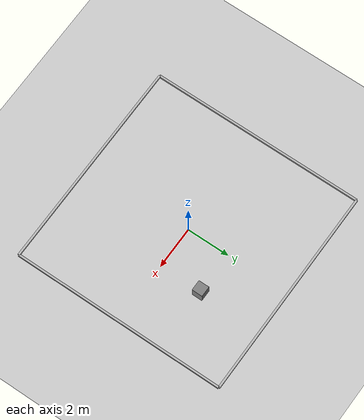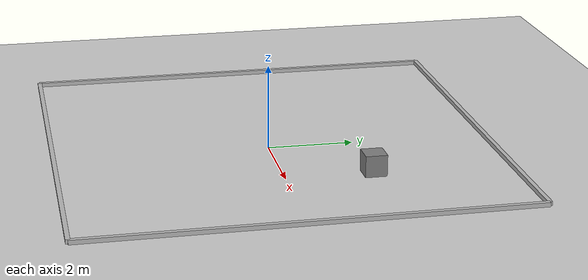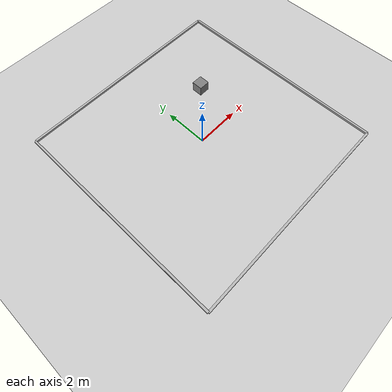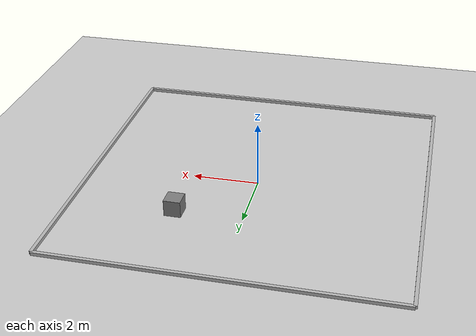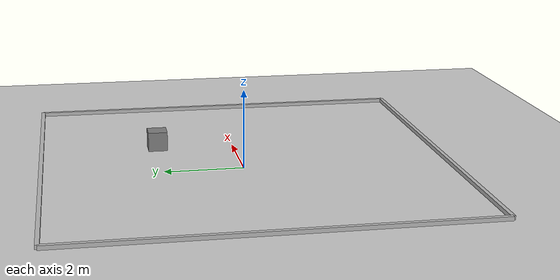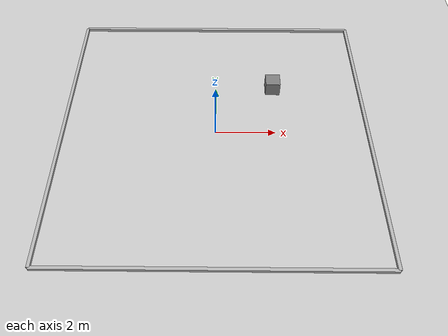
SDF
<?xml version="1.0" ?>
<sdf version="1.6">
  <world name="lawn_world">

    <!-- Sun -->
    <include>
      <uri>model://sun</uri>
    </include>

    <!-- Ground -->
    <include>
      <uri>model://ground_plane</uri>
    </include>

    <!-- Boundary wall -->

    <model name="lawn_boundary">
      <static>true</static>

      <link name="north">
        <pose>5 0 0.25 0 0 0</pose>
        <collision name="col"><geometry><box><size>0.1 10 0.1</size></box></geometry></collision>
        <visual name="vis"><geometry><box><size>0.1 10 0.1</size></box></geometry></visual>
      </link>

      <link name="south">
        <pose>-5 0 0.25 0 0 0</pose>
        <collision name="col"><geometry><box><size>0.1 10 0.1</size></box></geometry></collision>
        <visual name="vis"><geometry><box><size>0.1 10 0.1</size></box></geometry></visual>
      </link>

      <link name="east">
        <pose>0 5 0.25 0 0 0</pose>
        <collision name="col"><geometry><box><size>10 0.1 0.1</size></box></geometry></collision>
        <visual name="vis"><geometry><box><size>10 0.1 0.1</size></box></geometry></visual>
      </link>

      <link name="west">
        <pose>0 -5 0.25 0 0 0</pose>
        <collision name="col"><geometry><box><size>10 0.1 0.1</size></box></geometry></collision>
        <visual name="vis"><geometry><box><size>10 0.1 0.1</size></box></geometry></visual>
      </link>
    </model>

    <!-- Obstacle -->
    <model name="rock">
      <static>true</static>

      <pose>2 2 0.25 0 0 0</pose>

      <link name="rock_link">
        <collision name="rock_collision">
          <geometry>
            <box>
              <size>0.5 0.5 0.5</size>
            </box>
          </geometry>
        </collision>

        <visual name="rock_visual">
          <geometry>
            <box>
              <size>0.5 0.5 0.5</size>
            </box>
          </geometry>
          <material>
            <ambient>0.5 0.5 0.5 1</ambient>
            <diffuse>0.5 0.5 0.5 1</diffuse>
          </material>
        </visual>
      </link>
    </model>

  </world>
</sdf>
